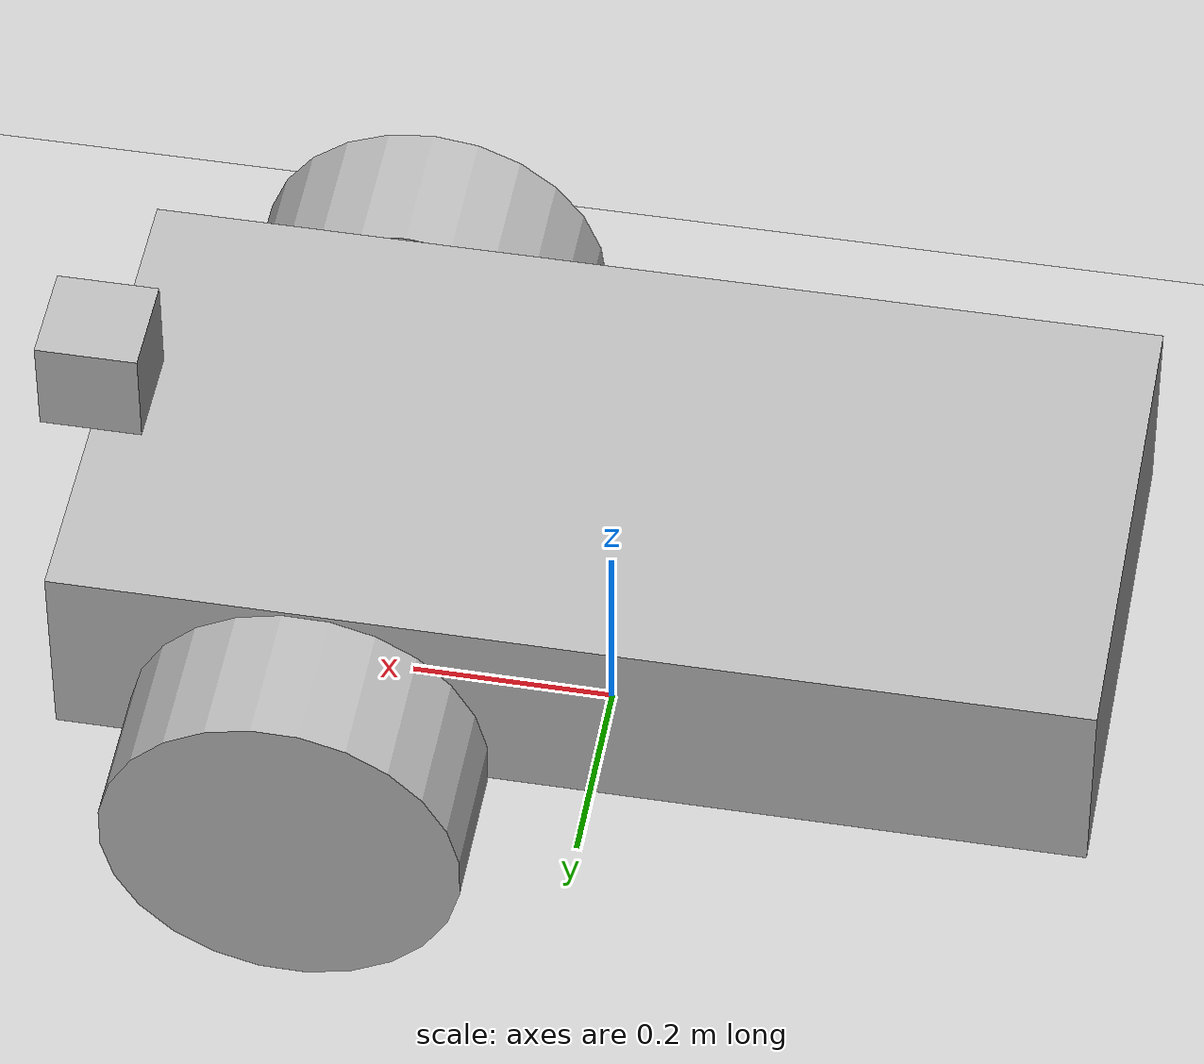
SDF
<sdf version="1.6">
 <world name="collision_world">
  <model name="ground_plane">
   <static>1</static>
   <link name="link">
    <collision name="collision">
     <geometry><plane><normal>0 0 1</normal><size>100 100</size></plane></geometry>
     <surface><friction><ode><mu>100</mu><mu2>50</mu2></ode></friction></surface>
    </collision>
    <visual name="visual">
     <cast_shadows>0</cast_shadows>
     <geometry><plane><normal>0 0 1</normal><size>100 100</size></plane></geometry>
     <material>
      <script><uri>file://media/materials/scripts/gazebo.material</uri><name>Gazebo/Grey</name></script>
     </material>
    </visual>
   </link>
  </model>
  <light name="sun" type="directional">
   <pose>0 0 10 0 -0 0</pose>
   <diffuse>0.8 0.8 0.8 1</diffuse>
   <specular>0.1 0.1 0.1 1</specular>
   <attenuation>
    <range>1000</range>
    <constant>0.9</constant>
    <linear>0.01</linear>
    <quadratic>0.001</quadratic>
   </attenuation>
   <direction>-0.5 0.5 -1</direction>
  </light>
  <model name="collision_model">
   <pose>-7.8e-05 9.1e-05 3e-06 0 -1.3e-05 -6.3e-05</pose>
   <static>0</static>
   <link name="chassis">
    <pose>0 0 0.25 0 -0 0</pose>
    <visual name="chassis_visual"><geometry><box><size>1 0.5 0.2</size></box></geometry></visual>
    <collision name="chassis_collision"><geometry><box><size>1 0.5 0.2</size></box></geometry></collision>
    <inertial>
     <inertia><ixx>1</ixx><ixy>0</ixy><ixz>0</ixz><iyy>1</iyy><iyz>0</iyz><izz>1</izz></inertia>
     <mass>1</mass>
    </inertial>
   </link>
   <link name="left_wheel">
    <pose>0.25 0.325 0.175 -1.57089 0.141593 3.14159</pose>
    <visual name="left_wheel_visual">
     <geometry><cylinder><radius>0.175</radius><length>0.145</length></cylinder></geometry>
    </visual>
    <collision name="left_wheel_collision">
     <geometry><cylinder><radius>0.175</radius><length>0.145</length></cylinder></geometry>
    </collision>
    <inertial>
     <inertia><ixx>1</ixx><ixy>0</ixy><ixz>0</ixz><iyy>1</iyy><iyz>0</iyz><izz>1</izz></inertia>
     <mass>1</mass>
    </inertial>
   </link>
   <link name="right_wheel">
    <pose>0.25 -0.325 0.175 1.5707 -0 0</pose>
    <visual name="right_wheel_visual">
     <geometry><cylinder><radius>0.175</radius><length>0.145</length></cylinder></geometry>
    </visual>
    <collision name="right_wheel_collision">
     <geometry><cylinder><radius>0.175</radius><length>0.145</length></cylinder></geometry>
    </collision>
    <inertial>
     <inertia><ixx>1</ixx><ixy>0</ixy><ixz>0</ixz><iyy>1</iyy><iyz>0</iyz><izz>1</izz></inertia>
     <mass>1</mass>
    </inertial>
   </link>
   <link name="central_wheel">
    <pose>-0.25 0 0.175 0 -0 0</pose>
    <visual name="central_wheel_visual"><geometry><sphere><radius>0.175</radius></sphere></geometry></visual>
    <collision name="central_wheel_collision">
     <geometry><sphere><radius>0.175</radius></sphere></geometry>
    </collision>
    <inertial>
     <inertia><ixx>1</ixx><ixy>0</ixy><ixz>0</ixz><iyy>1</iyy><iyz>0</iyz><izz>1</izz></inertia>
     <mass>1</mass>
    </inertial>
   </link>
   <model name="sensor_box">
    <link name="sensor_link">
     <pose>0.5 0 0.4 0 -0 0</pose>
     <collision name="sensor_box_collision"><geometry><box><size>0.1 0.1 0.1</size></box></geometry></collision>
     <visual name="sensor_box_visual"><geometry><box><size>0.1 0.1 0.1</size></box></geometry></visual>
     <sensor name="my_contact" type="contact">
      <contact><collision>sensor_box_collision</collision><topic>__default_topic__</topic></contact>
     </sensor>
     <inertial>
      <inertia><ixx>1</ixx><ixy>0</ixy><ixz>0</ixz><iyy>1</iyy><iyz>0</iyz><izz>1</izz></inertia>
      <mass>1</mass>
     </inertial>
    </link>
   </model>
   <joint name="left_wheel_hinge" type="revolute">
    <child>left_wheel</child>
    <parent>chassis</parent>
    <axis>
     <xyz>0 0 1</xyz>
     <use_parent_model_frame>0</use_parent_model_frame>
     <limit><lower>-1e+16</lower><upper>1e+16</upper></limit>
     <dynamics><spring_reference>0</spring_reference><spring_stiffness>0</spring_stiffness></dynamics>
    </axis>
   </joint>
   <joint name="right_wheel_hinge" type="revolute">
    <child>right_wheel</child>
    <parent>chassis</parent>
    <axis>
     <xyz>0 0 1</xyz>
     <use_parent_model_frame>0</use_parent_model_frame>
     <limit><lower>-1e+16</lower><upper>1e+16</upper></limit>
     <dynamics><spring_reference>0</spring_reference><spring_stiffness>0</spring_stiffness></dynamics>
    </axis>
   </joint>
   <joint name="central_wheel_hinge" type="ball"><child>central_wheel</child><parent>chassis</parent></joint>
   <joint name="collision_sensor_joint" type="fixed">
    <child>sensor_box::sensor_link</child>
    <parent>chassis</parent>
   </joint>
   <plugin name="carPlugin" filename="libcarPlugin.so"/>
   <plugin name="postbox1Plugin" filename="libpostbox1Plugin.so"/>
   <plugin name="postbox2Plugin" filename="libpostbox2Plugin.so"/>
  </model>
  <gravity>0 0 -9.8</gravity>
  <magnetic_field>6e-06 2.3e-05 -4.2e-05</magnetic_field>
  <atmosphere type="adiabatic"/>
  <physics name="default_physics" default="0" type="ode">
   <max_step_size>0.001</max_step_size>
   <real_time_factor>1</real_time_factor>
   <real_time_update_rate>1000</real_time_update_rate>
  </physics>
  <scene><ambient>0.4 0.4 0.4 1</ambient><background>0.7 0.7 0.7 1</background><shadows>1</shadows></scene>
  <spherical_coordinates>
   <surface_model>EARTH_WGS84</surface_model>
   <latitude_deg>0</latitude_deg>
   <longitude_deg>0</longitude_deg>
   <elevation>0</elevation>
   <heading_deg>0</heading_deg>
  </spherical_coordinates>
 </world>
</sdf>
